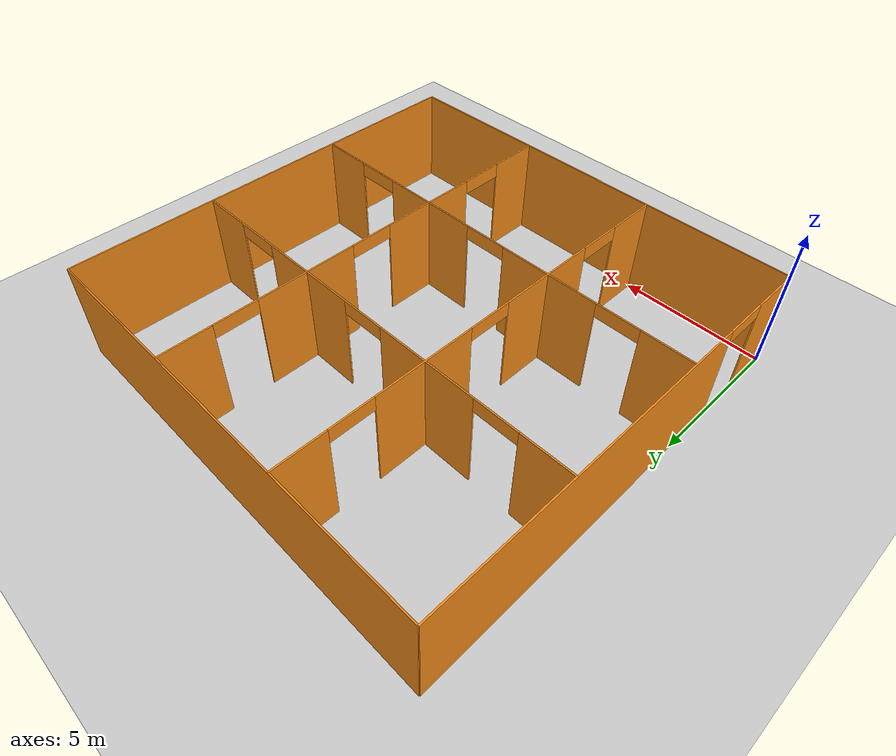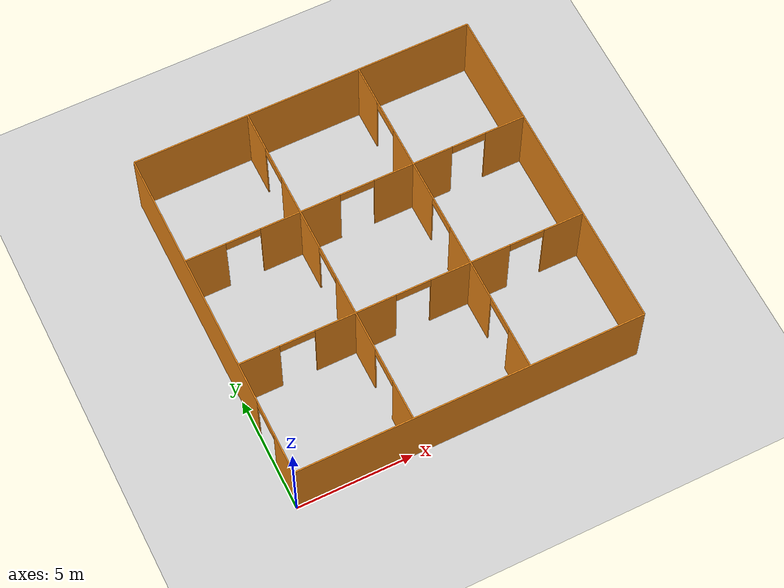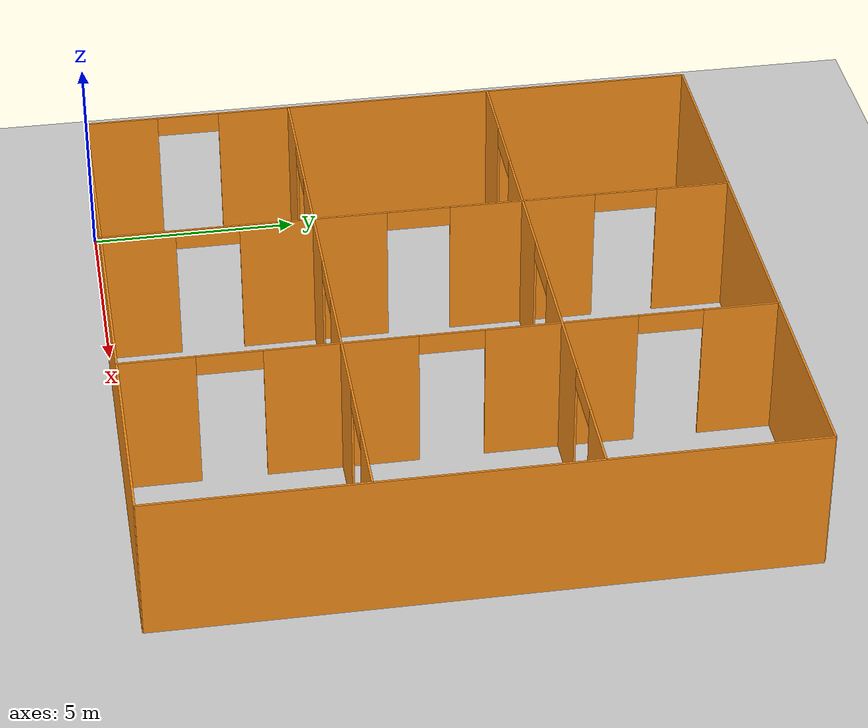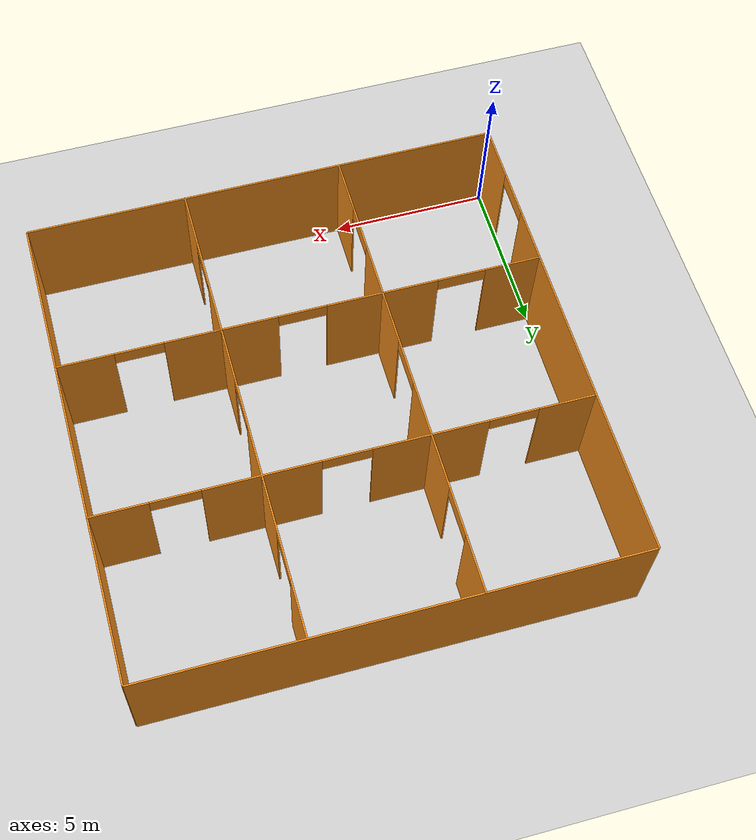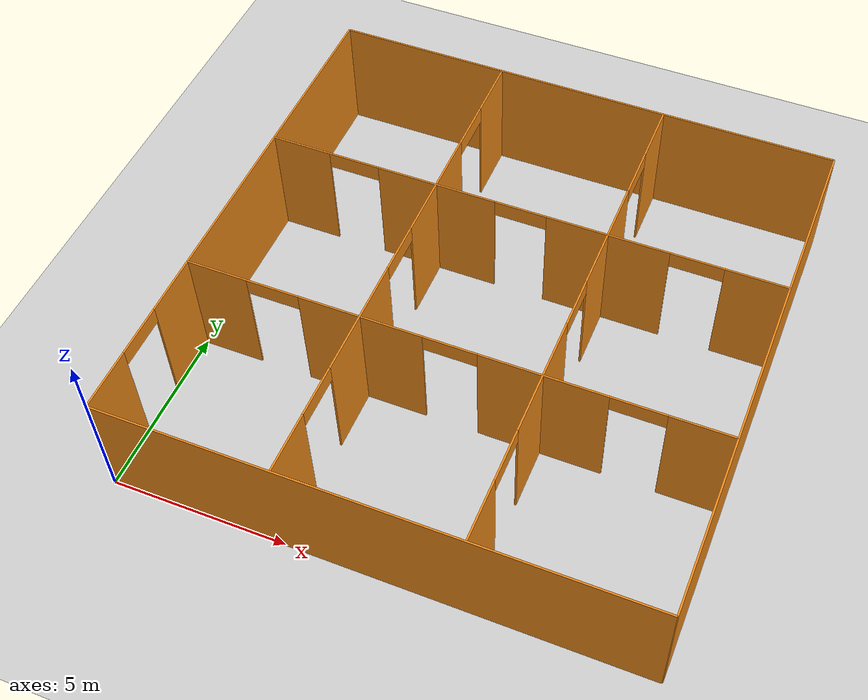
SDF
<sdf version="1.6">
 <world name="default">
  <model name="box_34">
   <pose>12.5 5.0 3.25 0 0 -3.141592653589793</pose>
   <link name="link">
    <inertial>
     <mass>1</mass>
     <inertia><ixx>0</ixx><ixy>0</ixy><ixz>0</ixz><iyy>0</iyy><iyz>0</iyz><izz>0</izz></inertia>
    </inertial>
    <collision name="collision"><geometry><box><size>1.5 0.05 0.5</size></box></geometry></collision>
    <visual name="visual">
     <geometry><box><size>1.5 0.05 0.5</size></box></geometry>
     <material>
      <script><name>Gazebo/Orange</name><uri>file://media/materials/scripts/gazebo.material</uri></script>
     </material>
    </visual>
   </link>
   <static>1</static>
  </model>
  <model name="box_33">
   <pose>12.5 10.0 3.25 0 0 -3.141592653589793</pose>
   <link name="link">
    <inertial>
     <mass>1</mass>
     <inertia><ixx>0</ixx><ixy>0</ixy><ixz>0</ixz><iyy>0</iyy><iyz>0</iyz><izz>0</izz></inertia>
    </inertial>
    <collision name="collision"><geometry><box><size>1.5 0.05 0.5</size></box></geometry></collision>
    <visual name="visual">
     <geometry><box><size>1.5 0.05 0.5</size></box></geometry>
     <material>
      <script><name>Gazebo/Orange</name><uri>file://media/materials/scripts/gazebo.material</uri></script>
     </material>
    </visual>
   </link>
   <static>1</static>
  </model>
  <model name="box_32">
   <pose>10.0 7.5 3.25 0 0 -1.5707963267948966</pose>
   <link name="link">
    <inertial>
     <mass>1</mass>
     <inertia><ixx>0</ixx><ixy>0</ixy><ixz>0</ixz><iyy>0</iyy><iyz>0</iyz><izz>0</izz></inertia>
    </inertial>
    <collision name="collision"><geometry><box><size>1.5 0.05 0.5</size></box></geometry></collision>
    <visual name="visual">
     <geometry><box><size>1.5 0.05 0.5</size></box></geometry>
     <material>
      <script><name>Gazebo/Orange</name><uri>file://media/materials/scripts/gazebo.material</uri></script>
     </material>
    </visual>
   </link>
   <static>1</static>
  </model>
  <model name="box_31">
   <pose>10.0 2.5 3.25 0 0 1.5707963267948966</pose>
   <link name="link">
    <inertial>
     <mass>1</mass>
     <inertia><ixx>0</ixx><ixy>0</ixy><ixz>0</ixz><iyy>0</iyy><iyz>0</iyz><izz>0</izz></inertia>
    </inertial>
    <collision name="collision"><geometry><box><size>1.5 0.05 0.5</size></box></geometry></collision>
    <visual name="visual">
     <geometry><box><size>1.5 0.05 0.5</size></box></geometry>
     <material>
      <script><name>Gazebo/Orange</name><uri>file://media/materials/scripts/gazebo.material</uri></script>
     </material>
    </visual>
   </link>
   <static>1</static>
  </model>
  <model name="box_30">
   <pose>7.5 5.0 3.25 0 0 -3.141592653589793</pose>
   <link name="link">
    <inertial>
     <mass>1</mass>
     <inertia><ixx>0</ixx><ixy>0</ixy><ixz>0</ixz><iyy>0</iyy><iyz>0</iyz><izz>0</izz></inertia>
    </inertial>
    <collision name="collision"><geometry><box><size>1.5 0.05 0.5</size></box></geometry></collision>
    <visual name="visual">
     <geometry><box><size>1.5 0.05 0.5</size></box></geometry>
     <material>
      <script><name>Gazebo/Orange</name><uri>file://media/materials/scripts/gazebo.material</uri></script>
     </material>
    </visual>
   </link>
   <static>1</static>
  </model>
  <model name="box_29">
   <pose>7.5 10.0 3.25 0 0 -3.141592653589793</pose>
   <link name="link">
    <inertial>
     <mass>1</mass>
     <inertia><ixx>0</ixx><ixy>0</ixy><ixz>0</ixz><iyy>0</iyy><iyz>0</iyz><izz>0</izz></inertia>
    </inertial>
    <collision name="collision"><geometry><box><size>1.5 0.05 0.5</size></box></geometry></collision>
    <visual name="visual">
     <geometry><box><size>1.5 0.05 0.5</size></box></geometry>
     <material>
      <script><name>Gazebo/Orange</name><uri>file://media/materials/scripts/gazebo.material</uri></script>
     </material>
    </visual>
   </link>
   <static>1</static>
  </model>
  <model name="box_28">
   <pose>10.0 12.5 3.25 0 0 1.5707963267948966</pose>
   <link name="link">
    <inertial>
     <mass>1</mass>
     <inertia><ixx>0</ixx><ixy>0</ixy><ixz>0</ixz><iyy>0</iyy><iyz>0</iyz><izz>0</izz></inertia>
    </inertial>
    <collision name="collision"><geometry><box><size>1.5 0.05 0.5</size></box></geometry></collision>
    <visual name="visual">
     <geometry><box><size>1.5 0.05 0.5</size></box></geometry>
     <material>
      <script><name>Gazebo/Orange</name><uri>file://media/materials/scripts/gazebo.material</uri></script>
     </material>
    </visual>
   </link>
   <static>1</static>
  </model>
  <model name="box_27">
   <pose>2.5 10.0 3.25 0 0 -3.141592653589793</pose>
   <link name="link">
    <inertial>
     <mass>1</mass>
     <inertia><ixx>0</ixx><ixy>0</ixy><ixz>0</ixz><iyy>0</iyy><iyz>0</iyz><izz>0</izz></inertia>
    </inertial>
    <collision name="collision"><geometry><box><size>1.5 0.05 0.5</size></box></geometry></collision>
    <visual name="visual">
     <geometry><box><size>1.5 0.05 0.5</size></box></geometry>
     <material>
      <script><name>Gazebo/Orange</name><uri>file://media/materials/scripts/gazebo.material</uri></script>
     </material>
    </visual>
   </link>
   <static>1</static>
  </model>
  <model name="box_26">
   <pose>2.5 5.0 3.25 0 0 -3.141592653589793</pose>
   <link name="link">
    <inertial>
     <mass>1</mass>
     <inertia><ixx>0</ixx><ixy>0</ixy><ixz>0</ixz><iyy>0</iyy><iyz>0</iyz><izz>0</izz></inertia>
    </inertial>
    <collision name="collision"><geometry><box><size>1.5 0.05 0.5</size></box></geometry></collision>
    <visual name="visual">
     <geometry><box><size>1.5 0.05 0.5</size></box></geometry>
     <material>
      <script><name>Gazebo/Orange</name><uri>file://media/materials/scripts/gazebo.material</uri></script>
     </material>
    </visual>
   </link>
   <static>1</static>
  </model>
  <model name="box_25">
   <pose>5.0 2.5 3.25 0 0 1.5707963267948966</pose>
   <link name="link">
    <inertial>
     <mass>1</mass>
     <inertia><ixx>0</ixx><ixy>0</ixy><ixz>0</ixz><iyy>0</iyy><iyz>0</iyz><izz>0</izz></inertia>
    </inertial>
    <collision name="collision"><geometry><box><size>1.5 0.05 0.5</size></box></geometry></collision>
    <visual name="visual">
     <geometry><box><size>1.5 0.05 0.5</size></box></geometry>
     <material>
      <script><name>Gazebo/Orange</name><uri>file://media/materials/scripts/gazebo.material</uri></script>
     </material>
    </visual>
   </link>
   <static>1</static>
  </model>
  <model name="box_24">
   <pose>5.0 7.5 3.25 0 0 1.5707963267948966</pose>
   <link name="link">
    <inertial>
     <mass>1</mass>
     <inertia><ixx>0</ixx><ixy>0</ixy><ixz>0</ixz><iyy>0</iyy><iyz>0</iyz><izz>0</izz></inertia>
    </inertial>
    <collision name="collision"><geometry><box><size>1.5 0.05 0.5</size></box></geometry></collision>
    <visual name="visual">
     <geometry><box><size>1.5 0.05 0.5</size></box></geometry>
     <material>
      <script><name>Gazebo/Orange</name><uri>file://media/materials/scripts/gazebo.material</uri></script>
     </material>
    </visual>
   </link>
   <static>1</static>
  </model>
  <model name="box_23">
   <pose>5.0 12.5 3.25 0 0 1.5707963267948966</pose>
   <link name="link">
    <inertial>
     <mass>1</mass>
     <inertia><ixx>0</ixx><ixy>0</ixy><ixz>0</ixz><iyy>0</iyy><iyz>0</iyz><izz>0</izz></inertia>
    </inertial>
    <collision name="collision"><geometry><box><size>1.5 0.05 0.5</size></box></geometry></collision>
    <visual name="visual">
     <geometry><box><size>1.5 0.05 0.5</size></box></geometry>
     <material>
      <script><name>Gazebo/Orange</name><uri>file://media/materials/scripts/gazebo.material</uri></script>
     </material>
    </visual>
   </link>
   <static>1</static>
  </model>
  <model name="box_22">
   <pose>0.0 2.5 3.25 0 0 -1.5707963267948966</pose>
   <link name="link">
    <inertial>
     <mass>1</mass>
     <inertia><ixx>0</ixx><ixy>0</ixy><ixz>0</ixz><iyy>0</iyy><iyz>0</iyz><izz>0</izz></inertia>
    </inertial>
    <collision name="collision"><geometry><box><size>1.5 0.05 0.5</size></box></geometry></collision>
    <visual name="visual">
     <geometry><box><size>1.5 0.05 0.5</size></box></geometry>
     <material>
      <script><name>Gazebo/Orange</name><uri>file://media/materials/scripts/gazebo.material</uri></script>
     </material>
    </visual>
   </link>
   <static>1</static>
  </model>
  <model name="box_21">
   <pose>10.0 5.0 1.75 0 0 -3.141592653589793</pose>
   <link name="link">
    <inertial>
     <mass>1</mass>
     <inertia><ixx>0</ixx><ixy>0</ixy><ixz>0</ixz><iyy>0</iyy><iyz>0</iyz><izz>0</izz></inertia>
    </inertial>
    <collision name="collision"><geometry><box><size>3.5 0.05 3.5</size></box></geometry></collision>
    <visual name="visual">
     <geometry><box><size>3.5 0.05 3.5</size></box></geometry>
     <material>
      <script><name>Gazebo/Orange</name><uri>file://media/materials/scripts/gazebo.material</uri></script>
     </material>
    </visual>
   </link>
   <static>1</static>
  </model>
  <model name="box_20">
   <pose>10.0 10.0 1.75 0 0 -3.141592653589793</pose>
   <link name="link">
    <inertial>
     <mass>1</mass>
     <inertia><ixx>0</ixx><ixy>0</ixy><ixz>0</ixz><iyy>0</iyy><iyz>0</iyz><izz>0</izz></inertia>
    </inertial>
    <collision name="collision"><geometry><box><size>3.5 0.05 3.5</size></box></geometry></collision>
    <visual name="visual">
     <geometry><box><size>3.5 0.05 3.5</size></box></geometry>
     <material>
      <script><name>Gazebo/Orange</name><uri>file://media/materials/scripts/gazebo.material</uri></script>
     </material>
    </visual>
   </link>
   <static>1</static>
  </model>
  <model name="box_19">
   <pose>10.0 0.875 1.75 0 0 1.5707963267948966</pose>
   <link name="link">
    <inertial>
     <mass>1</mass>
     <inertia><ixx>0</ixx><ixy>0</ixy><ixz>0</ixz><iyy>0</iyy><iyz>0</iyz><izz>0</izz></inertia>
    </inertial>
    <collision name="collision"><geometry><box><size>1.75 0.05 3.5</size></box></geometry></collision>
    <visual name="visual">
     <geometry><box><size>1.75 0.05 3.5</size></box></geometry>
     <material>
      <script><name>Gazebo/Orange</name><uri>file://media/materials/scripts/gazebo.material</uri></script>
     </material>
    </visual>
   </link>
   <static>1</static>
  </model>
  <model name="box_18">
   <pose>10.0 5.0 1.75 0 0 1.5707963267948966</pose>
   <link name="link">
    <inertial>
     <mass>1</mass>
     <inertia><ixx>0</ixx><ixy>0</ixy><ixz>0</ixz><iyy>0</iyy><iyz>0</iyz><izz>0</izz></inertia>
    </inertial>
    <collision name="collision"><geometry><box><size>3.5 0.05 3.5</size></box></geometry></collision>
    <visual name="visual">
     <geometry><box><size>3.5 0.05 3.5</size></box></geometry>
     <material>
      <script><name>Gazebo/Orange</name><uri>file://media/materials/scripts/gazebo.material</uri></script>
     </material>
    </visual>
   </link>
   <static>1</static>
  </model>
  <model name="box_17">
   <pose>10.0 10.0 1.75 0 0 1.5707963267948966</pose>
   <link name="link">
    <inertial>
     <mass>1</mass>
     <inertia><ixx>0</ixx><ixy>0</ixy><ixz>0</ixz><iyy>0</iyy><iyz>0</iyz><izz>0</izz></inertia>
    </inertial>
    <collision name="collision"><geometry><box><size>3.5 0.05 3.5</size></box></geometry></collision>
    <visual name="visual">
     <geometry><box><size>3.5 0.05 3.5</size></box></geometry>
     <material>
      <script><name>Gazebo/Orange</name><uri>file://media/materials/scripts/gazebo.material</uri></script>
     </material>
    </visual>
   </link>
   <static>1</static>
  </model>
  <model name="box_16">
   <pose>10.0 14.125 1.75 0 0 1.5707963267948966</pose>
   <link name="link">
    <inertial>
     <mass>1</mass>
     <inertia><ixx>0</ixx><ixy>0</ixy><ixz>0</ixz><iyy>0</iyy><iyz>0</iyz><izz>0</izz></inertia>
    </inertial>
    <collision name="collision"><geometry><box><size>1.75 0.05 3.5</size></box></geometry></collision>
    <visual name="visual">
     <geometry><box><size>1.75 0.05 3.5</size></box></geometry>
     <material>
      <script><name>Gazebo/Orange</name><uri>file://media/materials/scripts/gazebo.material</uri></script>
     </material>
    </visual>
   </link>
   <static>1</static>
  </model>
  <model name="box_15">
   <pose>5.0 14.125 1.75 0 0 -1.5707963267948966</pose>
   <link name="link">
    <inertial>
     <mass>1</mass>
     <inertia><ixx>0</ixx><ixy>0</ixy><ixz>0</ixz><iyy>0</iyy><iyz>0</iyz><izz>0</izz></inertia>
    </inertial>
    <collision name="collision"><geometry><box><size>1.75 0.05 3.5</size></box></geometry></collision>
    <visual name="visual">
     <geometry><box><size>1.75 0.05 3.5</size></box></geometry>
     <material>
      <script><name>Gazebo/Orange</name><uri>file://media/materials/scripts/gazebo.material</uri></script>
     </material>
    </visual>
   </link>
   <static>1</static>
  </model>
  <model name="box_14">
   <pose>5.0 10.0 1.75 0 0 -1.5707963267948966</pose>
   <link name="link">
    <inertial>
     <mass>1</mass>
     <inertia><ixx>0</ixx><ixy>0</ixy><ixz>0</ixz><iyy>0</iyy><iyz>0</iyz><izz>0</izz></inertia>
    </inertial>
    <collision name="collision"><geometry><box><size>3.5 0.05 3.5</size></box></geometry></collision>
    <visual name="visual">
     <geometry><box><size>3.5 0.05 3.5</size></box></geometry>
     <material>
      <script><name>Gazebo/Orange</name><uri>file://media/materials/scripts/gazebo.material</uri></script>
     </material>
    </visual>
   </link>
   <static>1</static>
  </model>
  <model name="box_13">
   <pose>5.0 5.0 1.75 0 0 -1.5707963267948966</pose>
   <link name="link">
    <inertial>
     <mass>1</mass>
     <inertia><ixx>0</ixx><ixy>0</ixy><ixz>0</ixz><iyy>0</iyy><iyz>0</iyz><izz>0</izz></inertia>
    </inertial>
    <collision name="collision"><geometry><box><size>3.5 0.05 3.5</size></box></geometry></collision>
    <visual name="visual">
     <geometry><box><size>3.5 0.05 3.5</size></box></geometry>
     <material>
      <script><name>Gazebo/Orange</name><uri>file://media/materials/scripts/gazebo.material</uri></script>
     </material>
    </visual>
   </link>
   <static>1</static>
  </model>
  <model name="box_12">
   <pose>5.0 0.875 1.75 0 0 -1.5707963267948966</pose>
   <link name="link">
    <inertial>
     <mass>1</mass>
     <inertia><ixx>0</ixx><ixy>0</ixy><ixz>0</ixz><iyy>0</iyy><iyz>0</iyz><izz>0</izz></inertia>
    </inertial>
    <collision name="collision"><geometry><box><size>1.75 0.05 3.5</size></box></geometry></collision>
    <visual name="visual">
     <geometry><box><size>1.75 0.05 3.5</size></box></geometry>
     <material>
      <script><name>Gazebo/Orange</name><uri>file://media/materials/scripts/gazebo.material</uri></script>
     </material>
    </visual>
   </link>
   <static>1</static>
  </model>
  <model name="box_11">
   <pose>14.125 10.0 1.75 0 0 -3.141592653589793</pose>
   <link name="link">
    <inertial>
     <mass>1</mass>
     <inertia><ixx>0</ixx><ixy>0</ixy><ixz>0</ixz><iyy>0</iyy><iyz>0</iyz><izz>0</izz></inertia>
    </inertial>
    <collision name="collision"><geometry><box><size>1.75 0.05 3.5</size></box></geometry></collision>
    <visual name="visual">
     <geometry><box><size>1.75 0.05 3.5</size></box></geometry>
     <material>
      <script><name>Gazebo/Orange</name><uri>file://media/materials/scripts/gazebo.material</uri></script>
     </material>
    </visual>
   </link>
   <static>1</static>
  </model>
  <model name="box_10">
   <pose>5.0 10.0 1.75 0 0 -3.141592653589793</pose>
   <link name="link">
    <inertial>
     <mass>1</mass>
     <inertia><ixx>0</ixx><ixy>0</ixy><ixz>0</ixz><iyy>0</iyy><iyz>0</iyz><izz>0</izz></inertia>
    </inertial>
    <collision name="collision"><geometry><box><size>3.5 0.05 3.5</size></box></geometry></collision>
    <visual name="visual">
     <geometry><box><size>3.5 0.05 3.5</size></box></geometry>
     <material>
      <script><name>Gazebo/Orange</name><uri>file://media/materials/scripts/gazebo.material</uri></script>
     </material>
    </visual>
   </link>
   <static>1</static>
  </model>
  <model name="box_9">
   <pose>0.875 10.0 1.75 0 0 -3.141592653589793</pose>
   <link name="link">
    <inertial>
     <mass>1</mass>
     <inertia><ixx>0</ixx><ixy>0</ixy><ixz>0</ixz><iyy>0</iyy><iyz>0</iyz><izz>0</izz></inertia>
    </inertial>
    <collision name="collision"><geometry><box><size>1.75 0.05 3.5</size></box></geometry></collision>
    <visual name="visual">
     <geometry><box><size>1.75 0.05 3.5</size></box></geometry>
     <material>
      <script><name>Gazebo/Orange</name><uri>file://media/materials/scripts/gazebo.material</uri></script>
     </material>
    </visual>
   </link>
   <static>1</static>
  </model>
  <model name="box_8">
   <pose>14.125 5.0 1.75 0 0 -3.141592653589793</pose>
   <link name="link">
    <inertial>
     <mass>1</mass>
     <inertia><ixx>0</ixx><ixy>0</ixy><ixz>0</ixz><iyy>0</iyy><iyz>0</iyz><izz>0</izz></inertia>
    </inertial>
    <collision name="collision"><geometry><box><size>1.75 0.05 3.5</size></box></geometry></collision>
    <visual name="visual">
     <geometry><box><size>1.75 0.05 3.5</size></box></geometry>
     <material>
      <script><name>Gazebo/Orange</name><uri>file://media/materials/scripts/gazebo.material</uri></script>
     </material>
    </visual>
   </link>
   <static>1</static>
  </model>
  <model name="box_7">
   <pose>5.0 5.0 1.75 0 0 -3.141592653589793</pose>
   <link name="link">
    <inertial>
     <mass>1</mass>
     <inertia><ixx>0</ixx><ixy>0</ixy><ixz>0</ixz><iyy>0</iyy><iyz>0</iyz><izz>0</izz></inertia>
    </inertial>
    <collision name="collision"><geometry><box><size>3.5 0.05 3.5</size></box></geometry></collision>
    <visual name="visual">
     <geometry><box><size>3.5 0.05 3.5</size></box></geometry>
     <material>
      <script><name>Gazebo/Orange</name><uri>file://media/materials/scripts/gazebo.material</uri></script>
     </material>
    </visual>
   </link>
   <static>1</static>
  </model>
  <model name="box_6">
   <pose>0.875 5.0 1.75 0 0 -0.0</pose>
   <link name="link">
    <inertial>
     <mass>1</mass>
     <inertia><ixx>0</ixx><ixy>0</ixy><ixz>0</ixz><iyy>0</iyy><iyz>0</iyz><izz>0</izz></inertia>
    </inertial>
    <collision name="collision"><geometry><box><size>1.75 0.05 3.5</size></box></geometry></collision>
    <visual name="visual">
     <geometry><box><size>1.75 0.05 3.5</size></box></geometry>
     <material>
      <script><name>Gazebo/Orange</name><uri>file://media/materials/scripts/gazebo.material</uri></script>
     </material>
    </visual>
   </link>
   <static>1</static>
  </model>
  <model name="box_5">
   <pose>0.0 9.125 1.75 0 0 -1.5707963267948966</pose>
   <link name="link">
    <inertial>
     <mass>1</mass>
     <inertia><ixx>0</ixx><ixy>0</ixy><ixz>0</ixz><iyy>0</iyy><iyz>0</iyz><izz>0</izz></inertia>
    </inertial>
    <collision name="collision"><geometry><box><size>11.75 0.05 3.5</size></box></geometry></collision>
    <visual name="visual">
     <geometry><box><size>11.75 0.05 3.5</size></box></geometry>
     <material>
      <script><name>Gazebo/Orange</name><uri>file://media/materials/scripts/gazebo.material</uri></script>
     </material>
    </visual>
   </link>
   <static>1</static>
  </model>
  <model name="box_4">
   <pose>0.0 0.875 1.75 0 0 1.5707963267948966</pose>
   <link name="link">
    <inertial>
     <mass>1</mass>
     <inertia><ixx>0</ixx><ixy>0</ixy><ixz>0</ixz><iyy>0</iyy><iyz>0</iyz><izz>0</izz></inertia>
    </inertial>
    <collision name="collision"><geometry><box><size>1.75 0.05 3.5</size></box></geometry></collision>
    <visual name="visual">
     <geometry><box><size>1.75 0.05 3.5</size></box></geometry>
     <material>
      <script><name>Gazebo/Orange</name><uri>file://media/materials/scripts/gazebo.material</uri></script>
     </material>
    </visual>
   </link>
   <static>1</static>
  </model>
  <model name="box_3">
   <pose>7.5 0.0 1.75 0 0 -0.0</pose>
   <link name="link">
    <inertial>
     <mass>1</mass>
     <inertia><ixx>0</ixx><ixy>0</ixy><ixz>0</ixz><iyy>0</iyy><iyz>0</iyz><izz>0</izz></inertia>
    </inertial>
    <collision name="collision"><geometry><box><size>15.0 0.05 3.5</size></box></geometry></collision>
    <visual name="visual">
     <geometry><box><size>15.0 0.05 3.5</size></box></geometry>
     <material>
      <script><name>Gazebo/Orange</name><uri>file://media/materials/scripts/gazebo.material</uri></script>
     </material>
    </visual>
   </link>
   <static>1</static>
  </model>
  <model name="box_2">
   <pose>15.0 7.5 1.75 0 0 1.5707963267948966</pose>
   <link name="link">
    <inertial>
     <mass>1</mass>
     <inertia><ixx>0</ixx><ixy>0</ixy><ixz>0</ixz><iyy>0</iyy><iyz>0</iyz><izz>0</izz></inertia>
    </inertial>
    <collision name="collision"><geometry><box><size>15.0 0.05 3.5</size></box></geometry></collision>
    <visual name="visual">
     <geometry><box><size>15.0 0.05 3.5</size></box></geometry>
     <material>
      <script><name>Gazebo/Orange</name><uri>file://media/materials/scripts/gazebo.material</uri></script>
     </material>
    </visual>
   </link>
   <static>1</static>
  </model>
  <model name="box_1">
   <pose>7.5 15.0 1.75 0 0 -3.141592653589793</pose>
   <link name="link">
    <inertial>
     <mass>1</mass>
     <inertia><ixx>0</ixx><ixy>0</ixy><ixz>0</ixz><iyy>0</iyy><iyz>0</iyz><izz>0</izz></inertia>
    </inertial>
    <collision name="collision"><geometry><box><size>15.0 0.05 3.5</size></box></geometry></collision>
    <visual name="visual">
     <geometry><box><size>15.0 0.05 3.5</size></box></geometry>
     <material>
      <script><name>Gazebo/Orange</name><uri>file://media/materials/scripts/gazebo.material</uri></script>
     </material>
    </visual>
   </link>
   <static>1</static>
  </model>
  <model name="ground_plane">
   <static>1</static>
   <link name="link">
    <collision name="collision">
     <geometry><plane><normal>0 0 1</normal><size>100 100</size></plane></geometry>
     <surface>
      <contact><collide_bitmask>65535</collide_bitmask></contact>
      <friction><ode><mu>100</mu><mu2>50</mu2></ode></friction>
     </surface>
    </collision>
    <visual name="visual">
     <cast_shadows>0</cast_shadows>
     <geometry><plane><normal>0 0 1</normal><size>100 100</size></plane></geometry>
     <material>
      <script><uri>file://media/materials/scripts/gazebo.material</uri><name>Gazebo/Grey</name></script>
     </material>
    </visual>
   </link>
  </model>
 </world>
</sdf>
